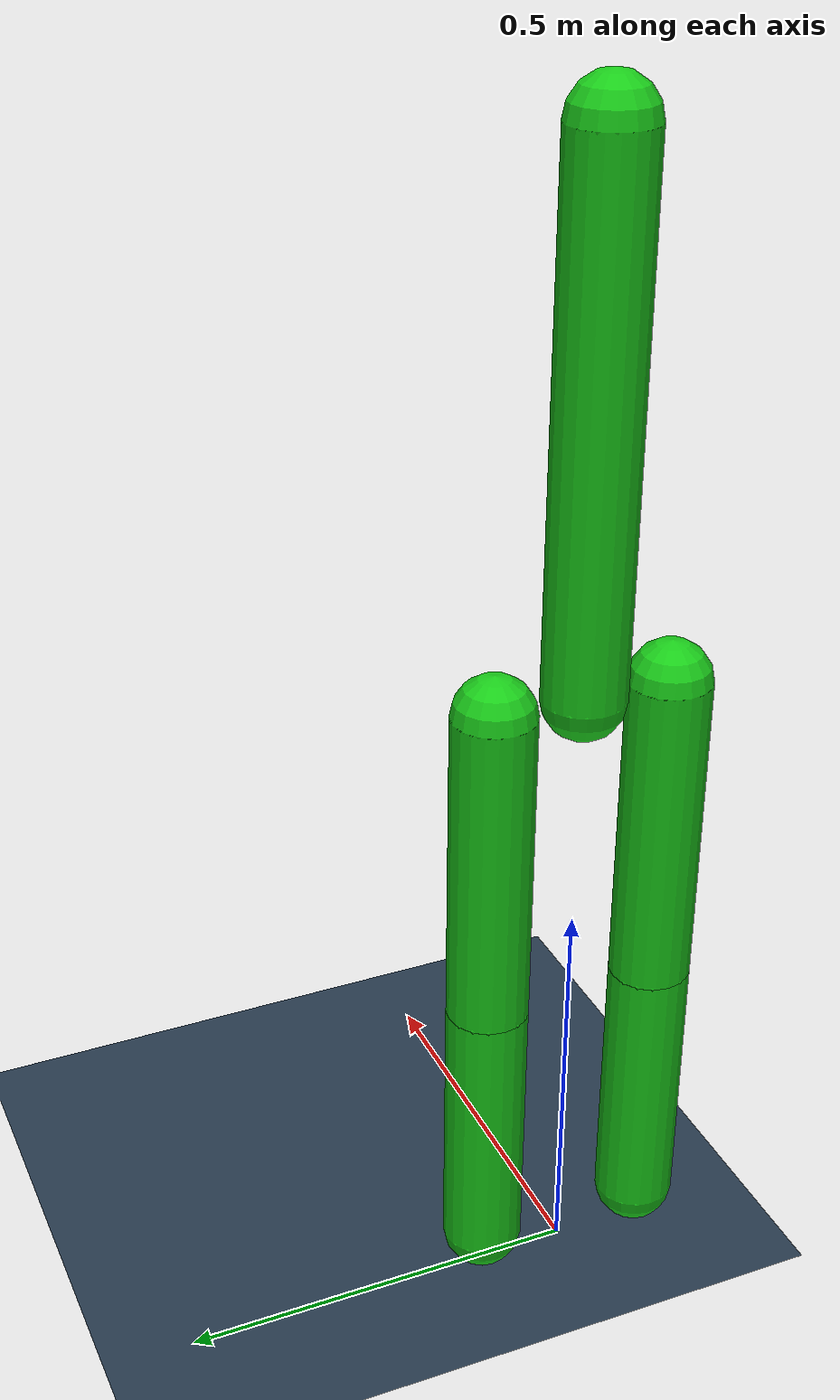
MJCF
<!--
	This model consists of a five link pendulum tree, to make up a basic walker
	All joints are hinges and the body is contraint to the saggital plane

	Modified based on work by Robert Roos
-->
<mujoco model="FiveLinkBiped">

	<compiler inertiafromgeom="true" angle="radian"/>
	<option>
		<flag energy="enable"/>
	</option>
	<default>
		<joint damping="1" armature="0"/>
		<geom condim="1" material="matgeom" solref="0.05 2"/>
	</default>

	<asset>
		<texture type="skybox" builtin="gradient" rgb1="0.3 0.5 0.7" rgb2="0.2 0.2 0.2" width="512" height="512"/>
		<texture name="texplane" type="2d" builtin="checker" rgb1=".2 .3 .4" rgb2=".1 0.15 0.2" width="512" height="512" mark="cross" markrgb=".8 .8 .8"/>

		<material name="matplane" texture="texplane" texrepeat="1 1" texuniform="true"/>
		<material name="matgeom" rgba="0.1 0.8 0.1 1"/>
	</asset>

	<worldbody>
		<light diffuse="0.8 0.8 0.8" pos="0.75 0.75 1.5" dir="-0.5 -0.5 -1"/>

		<geom name="floor" pos="0 0 0.0" size="5 5 .25" type="plane" material="matplane" condim="3"/>

		<!--Link 1/torso-->
		<body pos="0 0.0 0.801" name="torso">
			<joint type="slide" axis = "1 0 0" name="slidex"/>
			<joint type="slide" axis = "0 0 1" name="slidey"/>
			<joint type="hinge" axis="0 1 0" name="upper_body_rotation"/>
			<geom name="link1" type="capsule" fromto="0 0 0 0 0 0.625" size="0.05 0.3"/>

			<!-- Link 2/ right leg upper-->
			<body pos="0 -0.11 0.0" name="right_femur">
				<joint type="hinge" axis="0 -1 0" name="right_hip" limited="true" range="-0.53 1.92"/>
				<geom name="link2" type="capsule" fromto="0 0 0 0 0 -0.4" size="0.05 0.3"/>

				<!-- Link 3 / right leg down-->
				<body pos="0 0 -0.4" name="right_tibia">
					<joint type="hinge" axis="0 1 0" name="right_knee" limited="true" range="-0.08 2.35"/>
					<geom name="link3" type="capsule" fromto="0 0 0 0 0 -0.35" size="0.05 0.3"/>
				</body>
			</body>

			<!-- Link 4/ left leg upper-->
			<body pos="0 0.11 0.0" name="left_femur">
				<joint type="hinge" axis="0 -1 0" name="left_hip" limited="true" range="-0.53 1.92"/>
				<geom name="link4" type="capsule" fromto="0 0 0 0 0 -0.4" size="0.05 0.3"/>

				<!-- Link 5 / right leg down-->
				<body pos="0 0 -0.4" name="left_tibia">
					<joint type="hinge" axis="0 1 0" name="left_knee" limited="true" range="-0.08 2.35"/>
					<geom name="link5" type="capsule" fromto="0 0 0 0 0 -0.35" size="0.05 0.3"/>
				</body>
			</body>
		</body>
	</worldbody>

	<actuator>
		<motor name="torque_right_hip" joint="right_hip" ctrlrange="-100 100" ctrllimited="true"/>
		<motor name="torque_right_knee" joint="right_knee" ctrlrange="-100 100" ctrllimited="true"/>
		<motor name="torque_left_hip" joint="left_hip" ctrlrange="-100 100" ctrllimited="true"/>
		<motor name="torque_left_knee" joint="left_knee" ctrlrange="-100 100" ctrllimited="true"/>
	</actuator>

	<sensor>
		<subtreecom name="com" body="right_tibia"/>
		<subtreelinvel name="linvel" body="right_tibia"/>
		<framepos name="torso_com" objtype = "body" objname="torso"/>

		<jointlimitpos name="right_knee_lim" joint="right_knee"/>
		<jointlimitpos name="right_hip_lim" joint="right_hip"/>
		<jointlimitpos name="left_knee_lim" joint="left_knee"/>
		<jointlimitpos name="left_hip_lim" joint="left_hip"/>
	</sensor>
</mujoco>
